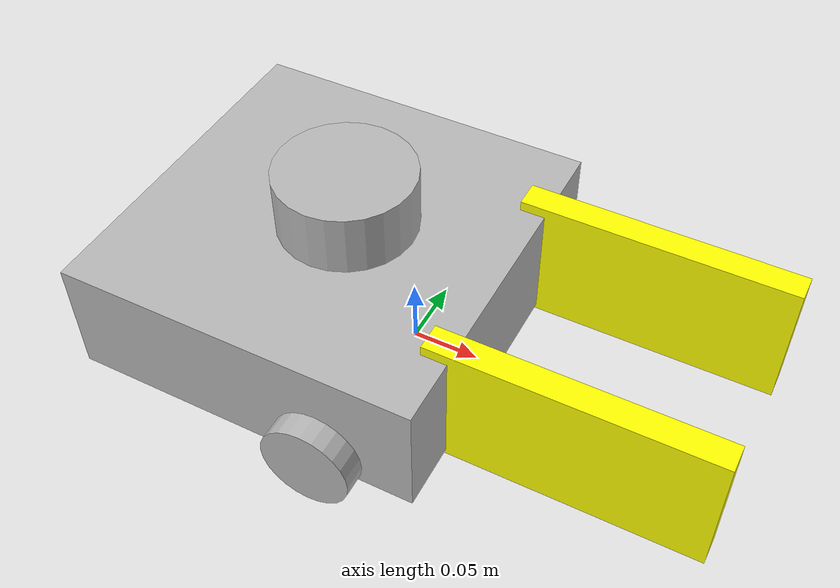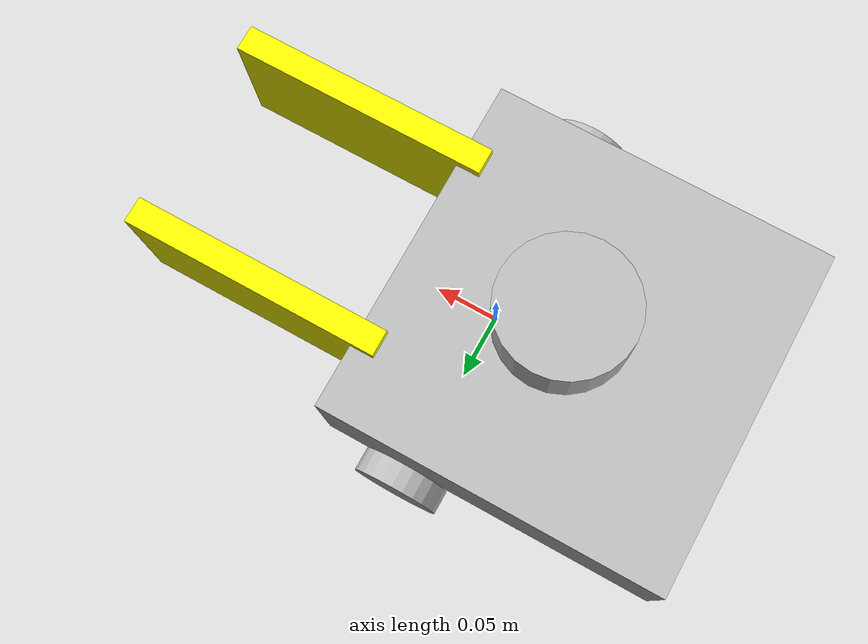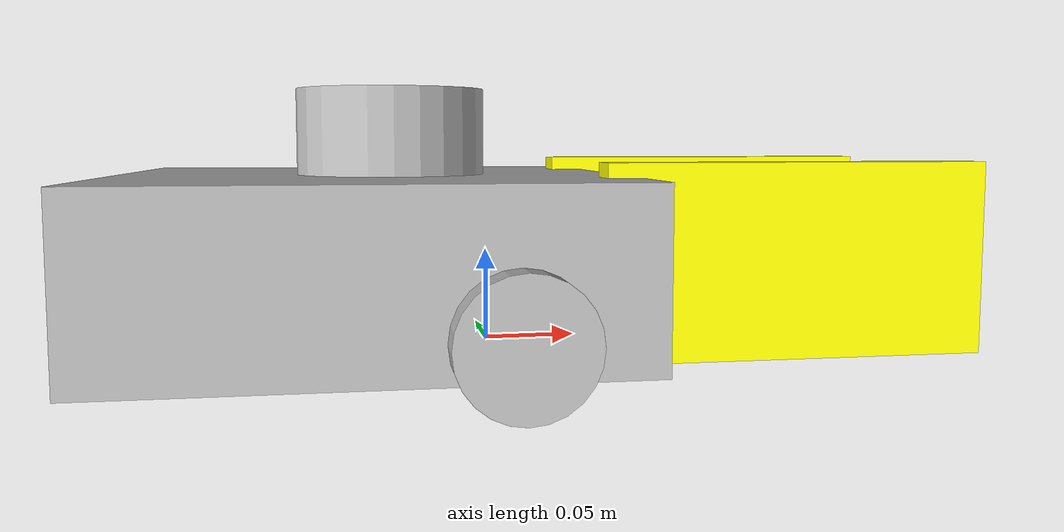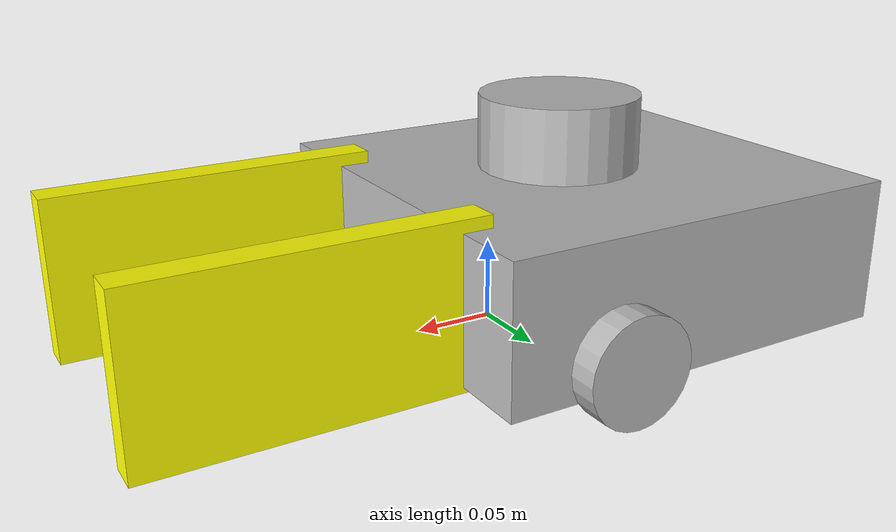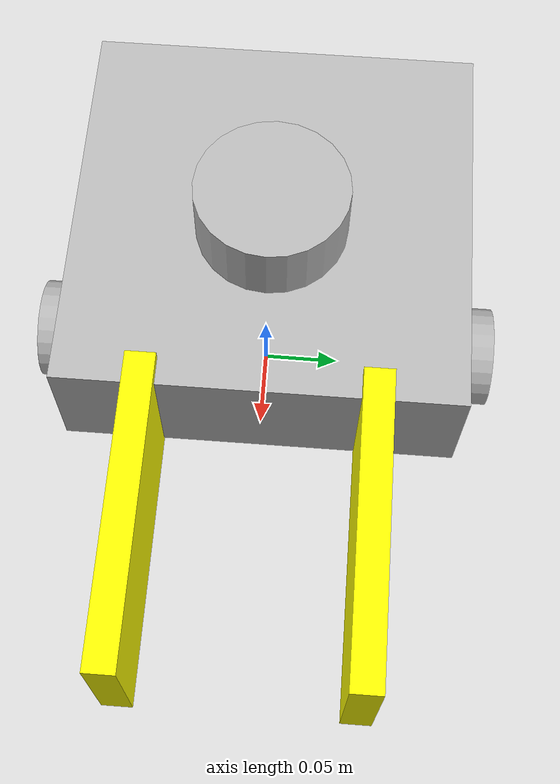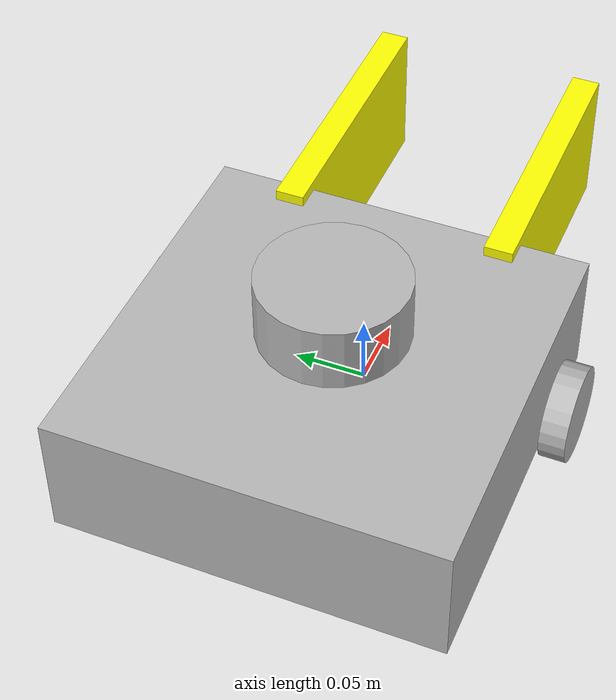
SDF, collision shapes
<?xml version="1.0" ?>
<sdf version="1.5">
  <model name="turtlebot3_baller">
    <pose>0.0 0.0 0.0 0.0 0.0 0.0</pose>

    <link name="base_footprint"/>

    <link name="base_link">
      <inertial>
        <pose>-0.064 0 0.048 0 0 0</pose>
        <inertia>
          <ixx>0.0295</ixx>
          <ixy>0</ixy>
          <ixz>0</ixz>
          <iyy>0.0295</iyy>
          <iyz>0</iyz>
          <izz>0.055</izz>
        </inertia>
        <mass>5.0</mass>
      </inertial>

      <collision name="base_collision">
        <pose>-0.064 0 0.048 0 0 0</pose>
        <geometry>
          <box>
            <size>0.265 0.265 0.089</size>
          </box>
        </geometry>
        <surface>
          <friction>
            <ode>
              <mu>1.0</mu>
              <mu2>1.0</mu2>
            </ode>
          </friction>
          <contact>
            <ode>
              <soft_cfm>0.0</soft_cfm>
              <soft_erp>0.8</soft_erp>
              <kp>1e5</kp>
              <kd>100</kd>
            </ode>
          </contact>
        </surface>
      </collision>

      <visual name="base_visual">
        <pose>-0.064 0 0 0 0 0</pose>
        <geometry>
          <mesh>
            <uri>model://turtlebot3_common/meshes/waffle_base.dae</uri>
            <scale>0.001 0.001 0.001</scale>
          </mesh>
        </geometry>
      </visual>
    </link>

    <link name="imu_link">
      <sensor name="tb3_imu" type="imu">
        <always_on>true</always_on>
        <update_rate>200</update_rate>
        <imu>
          <angular_velocity>
            <x>
              <noise type="gaussian">
                <mean>0.0</mean>
                <stddev>2e-4</stddev>
              </noise>
            </x>
            <y>
              <noise type="gaussian">
                <mean>0.0</mean>
                <stddev>2e-4</stddev>
              </noise>
            </y>
            <z>
              <noise type="gaussian">
                <mean>0.0</mean>
                <stddev>2e-4</stddev>
              </noise>
            </z>
          </angular_velocity>
          <linear_acceleration>
            <x>
              <noise type="gaussian">
                <mean>0.0</mean>
                <stddev>1.7e-2</stddev>
              </noise>
            </x>
            <y>
              <noise type="gaussian">
                <mean>0.0</mean>
                <stddev>1.7e-2</stddev>
              </noise>
            </y>
            <z>
              <noise type="gaussian">
                <mean>0.0</mean>
                <stddev>1.7e-2</stddev>
              </noise>
            </z>
          </linear_acceleration>
        </imu>
        <plugin name="turtlebot3_imu" filename="libgazebo_ros_imu_sensor.so">
          <ros>
            <remapping>~/out:=imu</remapping>
          </ros>
        </plugin>
      </sensor>
    </link>

    <link name="base_scan">
      <inertial>
        <pose>-0.052 0 0.111 0 0 0</pose>
        <inertia>
          <ixx>0.001</ixx>
          <ixy>0.000</ixy>
          <ixz>0.000</ixz>
          <iyy>0.001</iyy>
          <iyz>0.000</iyz>
          <izz>0.001</izz>
        </inertia>
        <mass>0.114</mass>
      </inertial>

      <collision name="lidar_sensor_collision">
        <pose>-0.052 0 0.111 0 0 0</pose>
        <geometry>
          <cylinder>
            <radius>0.0508</radius>
            <length>0.055</length>
          </cylinder>
        </geometry>
      </collision>

      <visual name="lidar_sensor_visual">
        <pose>-0.064 0 0.121 0 0 0</pose>
        <geometry>
          <mesh>
            <uri>model://turtlebot3_common/meshes/lds.dae</uri>
            <scale>0.001 0.001 0.001</scale>
          </mesh>
        </geometry>
      </visual>

      <sensor name="hls_lfcd_lds" type="ray">
        <always_on>true</always_on>
        <visualize>true</visualize>
        <pose>-0.064 0 0.121 0 0 0</pose>
        <update_rate>5</update_rate>
        <ray>
          <scan>
            <horizontal>
              <samples>360</samples>
              <resolution>1.000000</resolution>
              <min_angle>0.000000</min_angle>
              <max_angle>6.280000</max_angle>
            </horizontal>
          </scan>
          <range>
            <min>0.120000</min>
            <max>3.5</max>
            <resolution>0.015000</resolution>
          </range>
          <noise>
            <type>gaussian</type>
            <mean>0.0</mean>
            <stddev>0.01</stddev>
          </noise>
        </ray>
        <plugin name="turtlebot3_laserscan" filename="libgazebo_ros_ray_sensor.so">
          <ros>
            <remapping>~/out:=scan</remapping>
          </ros>
          <output_type>sensor_msgs/LaserScan</output_type>
          <frame_name>base_scan</frame_name>
        </plugin>
      </sensor>
    </link>

    <link name="wheel_left_link">
      <inertial>
        <pose>0.0 0.144 0.023 -1.57 0 0</pose>
        <inertia>
          <ixx>1.1175580e-05</ixx>
          <ixy>-4.2369783e-11</ixy>
          <ixz>-5.9381719e-09</ixz>
          <iyy>1.1192413e-05</iyy>
          <iyz>-1.4400107e-11</iyz>
          <izz>2.0712558e-05</izz>
        </inertia>
        <mass>0.1</mass>
      </inertial>

      <collision name="wheel_left_collision">
        <pose>0.0 0.144 0.023 -1.57 0 0</pose>
        <geometry>
          <cylinder>
            <radius>0.033</radius>
            <length>0.018</length>
          </cylinder>
        </geometry>
        <surface>
          <friction>
            <ode>
              <mu>1.0</mu>
              <mu2>1.0</mu2>
            </ode>
          </friction>
          <contact>
            <ode>
              <soft_cfm>0.0</soft_cfm>
              <soft_erp>0.8</soft_erp>
              <kp>1e5</kp>
              <kd>100</kd>
            </ode>
          </contact>
        </surface>
      </collision>

      <visual name="wheel_left_visual">
        <pose>0.0 0.144 0.023 0 0 0</pose>
        <geometry>
          <mesh>
            <uri>model://turtlebot3_common/meshes/tire.dae</uri>
            <scale>0.001 0.001 0.001</scale>
          </mesh>
        </geometry>
      </visual>
    </link>

    <link name="wheel_right_link">
      <inertial>
        <pose>0.0 -0.144 0.023 -1.57 0 0</pose>
        <inertia>
          <ixx>1.1175580e-05</ixx>
          <ixy>-4.2369783e-11</ixy>
          <ixz>-5.9381719e-09</ixz>
          <iyy>1.1192413e-05</iyy>
          <iyz>-1.4400107e-11</iyz>
          <izz>2.0712558e-05</izz>
        </inertia>
        <mass>0.1</mass>
      </inertial>

      <collision name="wheel_right_collision">
        <pose>0.0 -0.144 0.023 -1.57 0 0</pose>
        <geometry>
          <cylinder>
            <radius>0.033</radius>
            <length>0.018</length>
          </cylinder>
        </geometry>
        <surface>
          <friction>
            <ode>
              <mu>1.0</mu>
              <mu2>1.0</mu2>
            </ode>
          </friction>
          <contact>
            <ode>
              <soft_cfm>0.0</soft_cfm>
              <soft_erp>0.8</soft_erp>
              <kp>1e5</kp>
              <kd>100</kd>
            </ode>
          </contact>
        </surface>
      </collision>

      <visual name="wheel_right_visual">
        <pose>0.0 -0.144 0.023 0 0 0</pose>
        <geometry>
          <mesh>
            <uri>model://turtlebot3_common/meshes/tire.dae</uri>
            <scale>0.001 0.001 0.001</scale>
          </mesh>
        </geometry>
      </visual>
    </link>

    <link name="caster_back_right_link">
      <pose>-0.177 -0.064 -0.004 -1.57 0 0</pose>
      <inertial>
        <mass>0.001</mass>
        <inertia>
          <ixx>0.00001</ixx>
          <ixy>0.000</ixy>
          <ixz>0.000</ixz>
          <iyy>0.00001</iyy>
          <iyz>0.000</iyz>
          <izz>0.00001</izz>
        </inertia>
      </inertial>
      <collision name="collision">
        <geometry>
          <sphere>
            <radius>0.005000</radius>
          </sphere>
        </geometry>
        <surface>
          <contact>
            <ode>
              <soft_cfm>0</soft_cfm>
              <soft_erp>0.2</soft_erp>
              <kp>1e+5</kp>
              <kd>1</kd>
              <max_vel>0.01</max_vel>
              <min_depth>0.001</min_depth>
            </ode>
          </contact>
        </surface>
      </collision>
    </link>

    <link name="caster_back_left_link">
      <pose>-0.177 0.064 -0.004 -1.57 0 0</pose>
      <inertial>
        <mass>0.001</mass>
        <inertia>
          <ixx>0.00001</ixx>
          <ixy>0.000</ixy>
          <ixz>0.000</ixz>
          <iyy>0.00001</iyy>
          <iyz>0.000</iyz>
          <izz>0.00001</izz>
        </inertia>
      </inertial>
      <collision name="collision">
        <geometry>
          <sphere>
            <radius>0.005000</radius>
          </sphere>
        </geometry>
        <surface>
          <contact>
            <ode>
              <soft_cfm>0</soft_cfm>
              <soft_erp>0.2</soft_erp>
              <kp>1e+5</kp>
              <kd>1</kd>
              <max_vel>0.01</max_vel>
              <min_depth>0.001</min_depth>
            </ode>
          </contact>
        </surface>
      </collision>
    </link>

    <link name="camera_link"/>

    <link name="camera_rgb_frame">
      <inertial>
        <pose>0.064 0 0.107 0 0 0</pose>
        <inertia>
          <ixx>0.001</ixx>
          <ixy>0.000</ixy>
          <ixz>0.000</ixz>
          <iyy>0.001</iyy>
          <iyz>0.000</iyz>
          <izz>0.001</izz>
        </inertia>
        <mass>0.035</mass>
      </inertial>

      <pose>0.064 0 0.107 0 0 0</pose>
      <sensor name="camera" type="camera">
        <always_on>true</always_on>
        <visualize>true</visualize>
        <update_rate>30</update_rate>
        <camera name="intel_realsense_r200">
          <horizontal_fov>1.02974</horizontal_fov>
          <image>
            <width>1920</width>
            <height>1080</height>
            <format>R8G8B8</format>
          </image>
          <clip>
            <near>0.02</near>
            <far>300</far>
          </clip>
          <noise>
            <type>gaussian</type>
            <mean>0.0</mean>
            <stddev>0.007</stddev>
          </noise>
        </camera>
        <plugin name="camera_driver" filename="libgazebo_ros_camera.so">
          <ros>
          </ros>
        </plugin>
      </sensor>
    </link>

    <!-- แผ่นด้านหน้าซ้าย -->
    <link name="front_left_plate">
      <inertial>
        <pose>0.15 0.075 0.05 0 0 0</pose> <!-- ปรับ y จาก 0.13 เป็น 0.1 -->
        <inertia>
          <ixx>0.0025</ixx>
          <ixy>0</ixy>
          <ixz>0</ixz>
          <iyy>0.0008</iyy>
          <iyz>0</iyz>
          <izz>0.003</izz>
        </inertia>
        <mass>0.3</mass>
      </inertial>

      <collision name="front_left_plate_collision">
        <pose>0.15 0.075 0.05 0 0 0</pose> <!-- ปรับ y จาก 0.13 เป็น 0.1 -->
        <geometry>
          <box>
            <size>0.2 0.02 0.1</size>
          </box>
        </geometry>
        <surface>
          <friction>
            <ode>
              <mu>1.0</mu>
              <mu2>1.0</mu2>
            </ode>
          </friction>
          <contact>
            <ode>
              <soft_cfm>0.0</soft_cfm>
              <soft_erp>0.8</soft_erp>
              <kp>1e5</kp>
              <kd>100</kd>
            </ode>
          </contact>
        </surface>
      </collision>

      <visual name="front_left_plate_visual">
        <pose>0.15 0.075 0.05 0 0 0</pose> <!-- ปรับ y จาก 0.13 เป็น 0.1 -->
        <geometry>
          <box>
            <size>0.2 0.02 0.1</size>
          </box>
        </geometry>
        <material>
          <diffuse>1.0 1.0 0.0 1.0</diffuse> <!-- สีเหลือง -->
        </material>
      </visual>
    </link>

    <!-- แผ่นด้านหน้าขวา -->
    <link name="front_right_plate">
      <inertial>
        <pose>0.15 -0.075 0.05 0 0 0</pose> <!-- ปรับ y จาก -0.13 เป็น -0.1 -->
        <inertia>
          <ixx>0.0025</ixx>ห
          <ixy>0</ixy>
          <ixz>0</ixz>
          <iyy>0.0008</iyy>
          <iyz>0</iyz>
          <izz>0.003</izz>
        </inertia>
        <mass>0.3</mass>
      </inertial>

      <collision name="front_right_plate_collision">
        <pose>0.15 -0.075 0.05 0 0 0</pose> <!-- ปรับ y จาก -0.13 เป็น -0.1 -->
        <geometry>ห
          <box>
            <size>0.2 0.02 0.1</size>
          </box>
        </geometry>
        <surface>
          <friction>
            <ode>
              <mu>1.0</mu>
              <mu2>1.0</mu2>
            </ode>
          </friction>
          <contact>
            <ode>
              <soft_cfm>0.0</soft_cfm>
              <soft_erp>0.8</soft_erp>
              <kp>1e5</kp>
              <kd>100</kd>
            </ode>
          </contact>
        </surface>
      </collision>

      <visual name="front_right_plate_visual">
        <pose>0.15 -0.075 0.05 0 0 0</pose> <!-- ปรับ y จาก -0.13 เป็น -0.1 -->
        <geometry>
          <box>
            <size>0.2 0.02 0.1</size>
          </box>
        </geometry>ห
        <material>
          <diffuse>1.0 1.0 0.0 1.0</diffuse> <!-- สีเหลือง -->
        </material>
      </visual>
    </link>

    <joint name="base_joint" type="fixed">
      <parent>base_footprint</parent>
      <child>base_link</child>
      <pose>0.0 0.0 0.010 0 0 0</pose>
    </joint>

    <joint name="wheel_left_joint" type="revolute">
      <parent>base_link</parent>
      <child>wheel_left_link</child>
      <pose>0.0 0.144 0.023 -1.57 0 0</pose>
      <axis>
        <xyz>0 0 1</xyz>
      </axis>
    </joint>

    <joint name="wheel_right_joint" type="revolute">
      <parent>base_link</parent>
      <child>wheel_right_link</child>
      <pose>0.0 -0.144 0.023 -1.57 0 0</pose>
      <axis>
        <xyz>0 0 1</xyz>
      </axis>
    </joint>

    <joint name="caster_back_right_joint" type="ball">
      <parent>base_link</parent>
      <child>caster_back_right_link</child>
    </joint>

    <joint name="caster_back_left_joint" type="ball">
      <parent>base_link</parent>
      <child>caster_back_left_link</child>
    </joint>

    <joint name="imu_joint" type="fixed">
      <parent>base_link</parent>
      <child>imu_link</child>
      <pose>-0.032 0 0.068 0 0 0</pose>
      <axis>
        <xyz>0 0 1</xyz>
      </axis>
    </joint>

    <joint name="lidar_joint" type="fixed">
      <parent>base_link</parent>
      <child>base_scan</child>
      <pose>-0.064 0 0.121 0 0 0</pose>
      <axis>
        <xyz>0 0 1</xyz>
      </axis>
    </joint>

    <joint name="camera_joint" type="fixed">
      <parent>base_link</parent>
      <child>camera_link</child>
      <pose>0.064 0 0.094 0 0 0</pose>
      <axis>
        <xyz>0 0 1</xyz>
      </axis>
    </joint>

    <joint name="camera_rgb_joint" type="fixed">
      <parent>camera_link</parent>
      <child>camera_rgb_frame</child>
      <pose>0.0 0.0 0.013 0 0 0</pose>
      <axis>
        <xyz>0 0 1</xyz>
      </axis>
    </joint>

    <!-- เชื่อมแผ่นด้านหน้าซ้าย -->
    <joint name="front_left_plate_joint" type="fixed">
      <parent>base_link</parent>
      <child>front_left_plate</child>
      <pose>0.15 0.1 0.05 0 0.5 0.2527</pose> <!-- ปรับ y เป็น 0.1, pitch 0.5, yaw 0.2527 (≈14.48 องศา) -->
    </joint>

    <!-- เชื่อมแผ่นด้านหน้าขวา -->
    <joint name="front_right_plate_joint" type="fixed">
      <parent>base_link</parent>
      <child>front_right_plate</child>
      <pose>0.15 -0.1 0.05 0 -0.5 -0.2527</pose> <!-- ปรับ y เป็น -0.1, pitch -0.5, yaw -0.2527 (≈-14.48 องศา) -->
    </joint>

    <plugin name="turtlebot3_diff_drive" filename="libgazebo_ros_diff_drive.so">
      <ros>
      </ros>
      <update_rate>30</update_rate>
      <left_joint>wheel_left_joint</left_joint>
      <right_joint>wheel_right_joint</right_joint>
      <wheel_separation>0.287</wheel_separation>
      <wheel_diameter>0.066</wheel_diameter>
      <max_wheel_torque>20</max_wheel_torque>
      <max_wheel_acceleration>1.0</max_wheel_acceleration>
      <command_topic>cmd_vel</command_topic>
      <publish_odom>true</publish_odom>
      <publish_odom_tf>true</publish_odom_tf>
      <publish_wheel_tf>false</publish_wheel_tf>
      <odometry_topic>odom</odometry_topic>
      <odometry_frame>odom</odometry_frame>
      <robot_base_frame>base_footprint</robot_base_frame>
    </plugin>

    <plugin name="turtlebot3_joint_state" filename="libgazebo_ros_joint_state_publisher.so">
      <ros>
        <remapping>~/out:=joint_states</remapping>
      </ros>
      <update_rate>30</update_rate>
      <joint_name>wheel_left_joint</joint_name>
      <joint_name>wheel_right_joint</joint_name>
    </plugin>
  </model>
</sdf>
